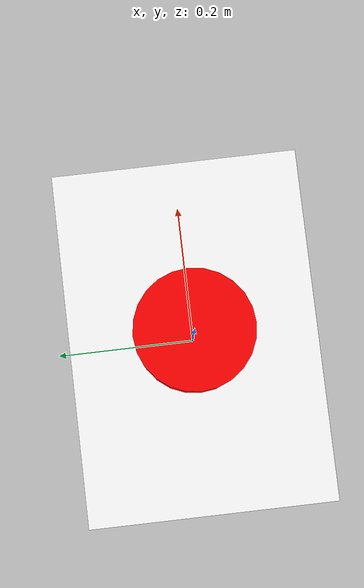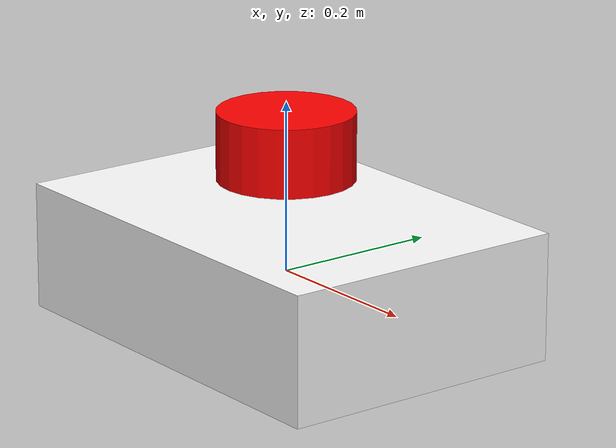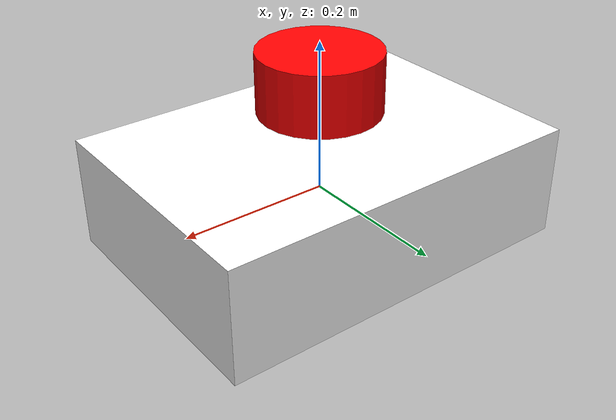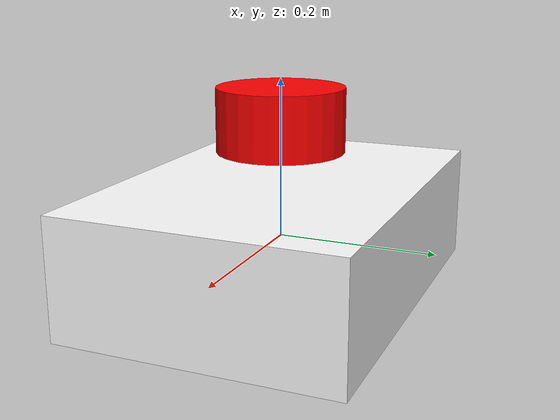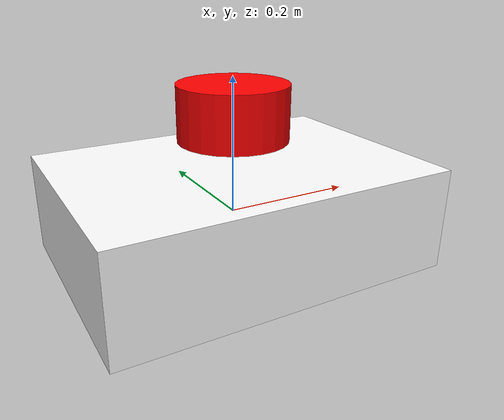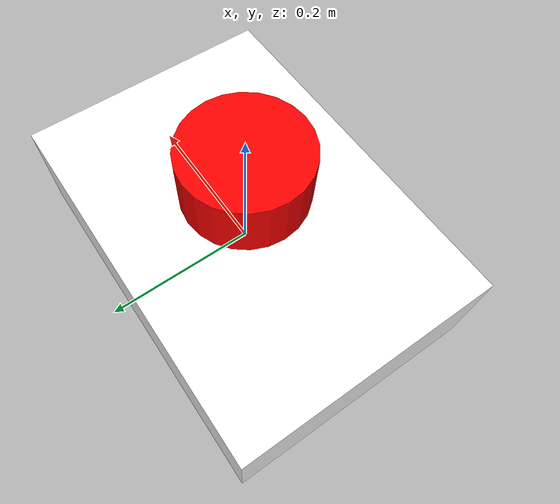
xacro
<?xml version="1.0"?>
<robot name="my_mobile_robot">

  <link name="base_link">
    <visual>
      <geometry>
        <box size="0.5 0.35 0.15"/>
      </geometry>
      <material name="white">
        <color rgba="1 1 1 1"/>
      </material>
    </visual>
  </link>

  <link name="lidar_link">
    <visual>
      <geometry>
        <cylinder radius="0.08" length="0.08"/>
      </geometry>
      <material name="red">
        <color rgba="1 0 0 1"/>
      </material>
    </visual>
  </link>

  <joint name="lidar_joint" type="fixed">
    <parent link="base_link"/>
    <child link="lidar_link"/>
    <origin xyz="0 0 0.15"/>
  </joint>

</robot>
